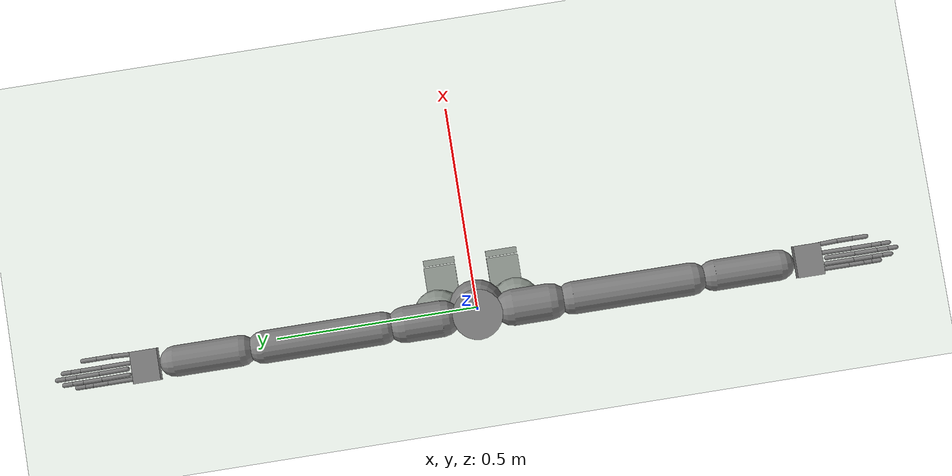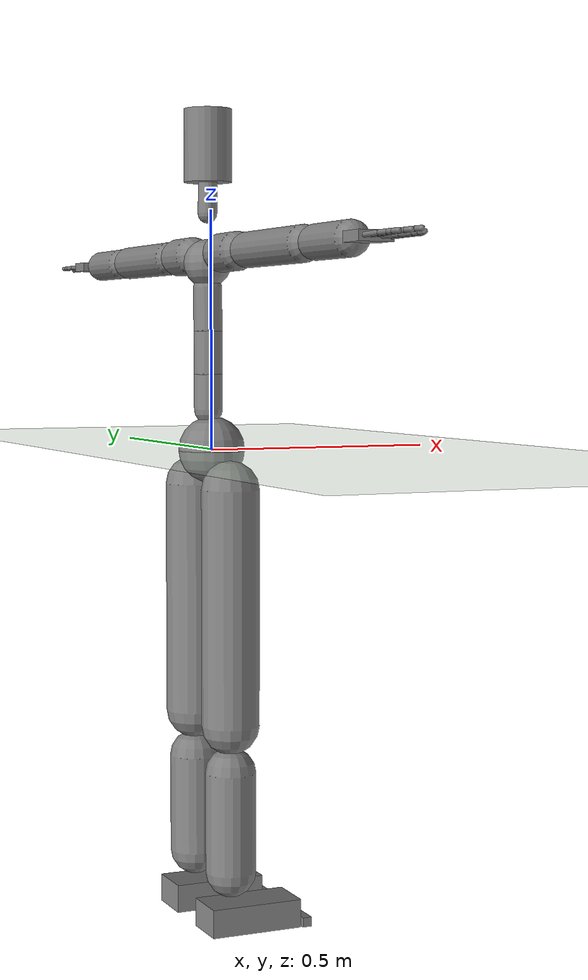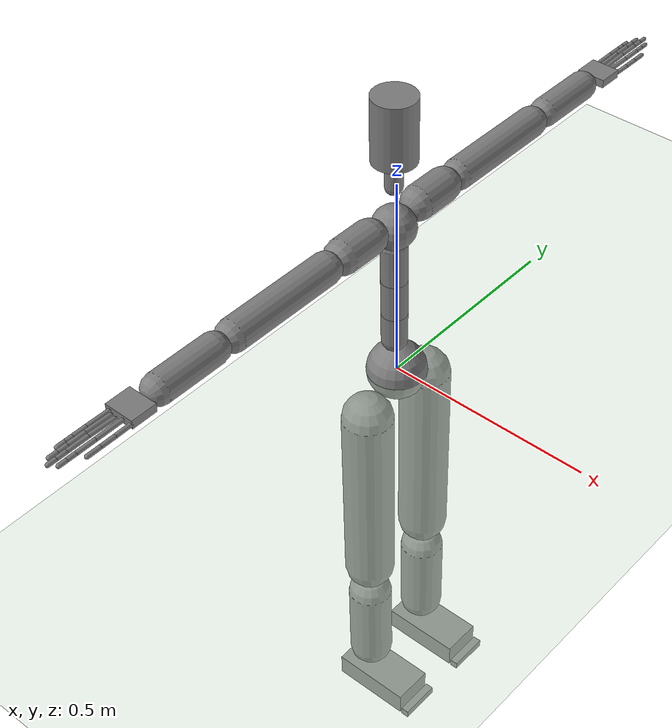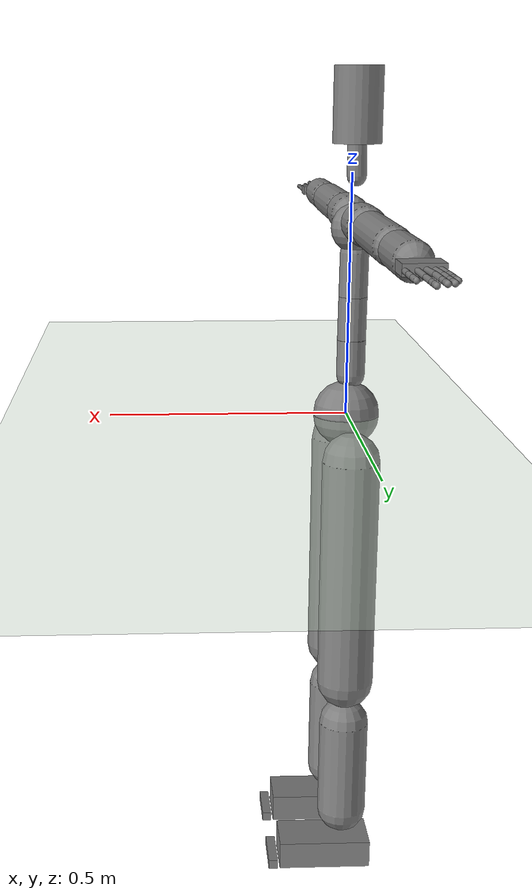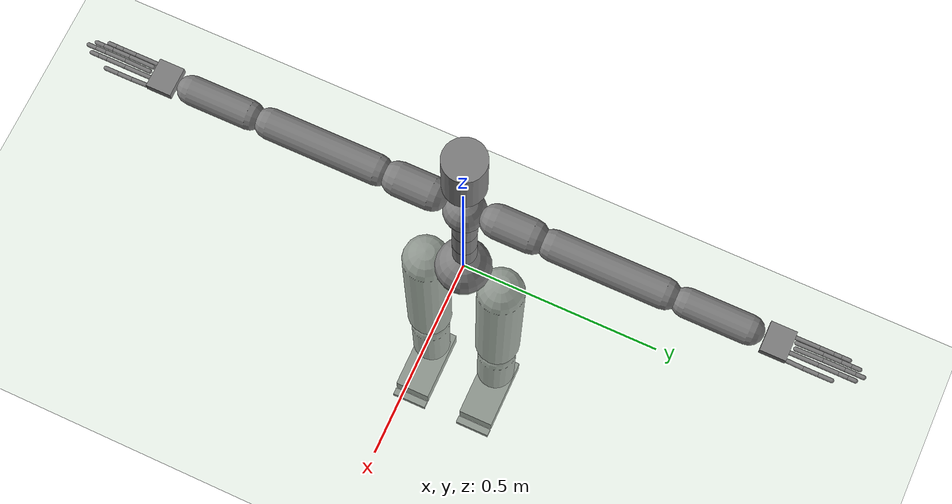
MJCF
<!-- change the damping from 50 to 500 -->
<mujoco model="humanoid">
  <compiler coordinate="local"/>
  <statistic extent="2" center="0 0 1"/>
  <option timestep="0.00555"/>
  <default>
    <motor ctrlrange="-1 1" ctrllimited="true"/>
    <geom type="capsule" condim="1" friction="1.0 0.05 0.05" solimp=".9 .99 .003" solref=".015 1"/>
    <joint type="hinge" damping="0.1" stiffness="5" armature=".007" limited="true" solimplimit="0 .99 .01"/>
    <site size=".04" group="3"/>
    <default class="force-torque">
      <site type="box" size=".01 .01 .02" rgba="1 0 0 1"/>
    </default>
    <default class="touch">
      <site type="capsule" rgba="0 0 1 .3"/>
    </default>
  </default>
  <asset>
    <texture type="skybox" builtin="gradient" rgb1=".4 .5 .6" rgb2="0 0 0" width="100" height="100"/>
    <texture builtin="flat" height="1278" mark="cross" markrgb="1 1 1" name="texgeom" random="0.01" rgb1="0.8 0.6 0.4" rgb2="0.8 0.6 0.4" type="cube" width="127"/>
    <texture builtin="checker" height="100" name="texplane" rgb1="0 0 0" rgb2="0.8 0.8 0.8" type="2d" width="100"/>
    <material name="MatPlane" reflectance="0.5" shininess="1" specular="1" texrepeat="60 60" texture="texplane"/>
    <material name="geom" texture="texgeom" texuniform="true"/>
  </asset>
  <worldbody>
    <light cutoff="100" diffuse="1 1 1" dir="-0 0 -1.3" directional="true" exponent="1" pos="0 0 1.3" specular=".1 .1 .1"/>
    <geom conaffinity="1" condim="3" name="floor" pos="0 0 0" rgba="0.8 0.9 0.8 1" size="100 100 .2" type="plane" material="MatPlane"/>
    <body name="pHipOrigin" pos="0 0 0">
      <freejoint name="pHipOrigin"/>
      <geom type="sphere" contype="1" conaffinity="1" density="4629.6296296296305" size="0.07011" pos="0.0000 0.0000 -0.0000"/>
      <body name="jL5S1" pos="-0.007187300529542061 0.0 0.06468552238174019">
        <geom type="capsule" contype="1" conaffinity="1" density="1000" fromto="0 0 0.02 0.0 0.0 0.09388382732868195" size="0.03"/>
        <joint name="jL5S1_x" type="hinge" pos="0 0 0" axis="1 0 0" stiffness="500" damping="500" armature="0.02" range="-180.0000 180.0000"/>
        <joint name="jL5S1_y" type="hinge" pos="0 0 0" axis="0 1 0" stiffness="500" damping="500" armature="0.02" range="-180.0000 180.0000"/>
        <joint name="jL5S1_z" type="hinge" pos="0 0 0" axis="0 0 1" stiffness="500" damping="500" armature="0.02" range="-180.0000 180.0000"/>
        <body name="jL4L3" pos="0.0 0.0 0.09388382732868195">
          <geom type="capsule" contype="1" conaffinity="1" density="1000" fromto="0 0 0 -0.0006975779393763393 0.0 0.09041846764764046" size="0.03"/>
          <joint name="jL4L3_x" type="hinge" pos="0 0 0" axis="1 0 0" stiffness="500" damping="500" armature="0.02" range="-180.0000 180.0000"/>
          <joint name="jL4L3_y" type="hinge" pos="0 0 0" axis="0 1 0" stiffness="500" damping="500" armature="0.02" range="-180.0000 180.0000"/>
          <joint name="jL4L3_z" type="hinge" pos="0 0 0" axis="0 0 1" stiffness="500" damping="500" armature="0.02" range="-180.0000 180.0000"/>
          <body name="jL1T12" pos="-0.0006975779393763393 0.0 0.09041846764764046">
            <geom type="capsule" contype="1" conaffinity="1" density="1000" fromto="0 0 0 -0.0007001363723100402 0.0 0.09057368234121517" size="0.03"/>
            <joint name="jL1T12_x" type="hinge" pos="0 0 0" axis="1 0 0" stiffness="500" damping="500" armature="0.02" range="-180.0000 180.0000"/>
            <joint name="jL1T12_y" type="hinge" pos="0 0 0" axis="0 1 0" stiffness="500" damping="500" armature="0.02" range="-180.0000 180.0000"/>
            <joint name="jL1T12_z" type="hinge" pos="0 0 0" axis="0 0 1" stiffness="500" damping="500" armature="0.02" range="-180.0000 180.0000"/>
            <body name="jT9T8" pos="-0.0007001363723100402 0.0 0.09057368234121517">
              <geom type="sphere" contype="1" conaffinity="1" density="1000" size="0.05011" pos="0.0000 0.0000 0.050000"/>
              <joint name="jT9T8_x" type="hinge" pos="0 0 0" axis="1 0 0" stiffness="500" damping="500" armature="0.02" range="-180.0000 180.0000"/>
              <joint name="jT9T8_y" type="hinge" pos="0 0 0" axis="0 1 0" stiffness="500" damping="500" armature="0.02" range="-180.0000 180.0000"/>
              <joint name="jT9T8_z" type="hinge" pos="0 0 0" axis="0 0 1" stiffness="500" damping="500" armature="0.02" range="-180.0000 180.0000"/>
              <body name="jT1C7" pos="0.0 0.0 0.12274900078773499">
                <geom type="capsule" contype="1" conaffinity="1" density="1000" fromto="0 0 0.03 0.0011120193594712515 0.0 0.09425794469644737" size="0.02"/>
                <joint name="jT1C7_x" type="hinge" pos="0 0 0" axis="1 0 0" stiffness="500" damping="500" armature="0.02" range="-180.0000 180.0000"/>
                <joint name="jT1C7_y" type="hinge" pos="0 0 0" axis="0 1 0" stiffness="500" damping="500" armature="0.02" range="-180.0000 180.0000"/>
                <joint name="jT1C7_z" type="hinge" pos="0 0 0" axis="0 0 1" stiffness="500" damping="500" armature="0.02" range="-180.0000 180.0000"/>
                <body name="jC1Head" pos="0.0011120193594712515 0.0 0.09425794469644737">
                  <geom type="cylinder" contype="1" conaffinity="1" density="1000" fromto="0 0 0 0 0 0.15" size="0.05"/>
                  <joint name="jC1Head_x" type="hinge" pos="0 0 0" axis="1 0 0" stiffness="500" damping="500" armature="0.02" range="-180.0000 180.0000"/>
                  <joint name="jC1Head_y" type="hinge" pos="0 0 0" axis="0 1 0" stiffness="500" damping="500" armature="0.02" range="-180.0000 180.0000"/>
                  <joint name="jC1Head_z" type="hinge" pos="0 0 0" axis="0 0 1" stiffness="500" damping="500" armature="0.02" range="-180.0000 180.0000"/>
                </body>
              </body>
              <body name="jRightT4Shoulder" pos="0.0 -0.02812971147759428 0.06858641055517392">
                <geom type="capsule" contype="1" conaffinity="1" density="1000" fromto="0 -0.05 0 0.0 -0.132083460688591 0.0" size="0.04"/>
                <joint name="jRightT4Shoulder_x" type="hinge" pos="0 0 0" axis="1 0 0" stiffness="500" damping="500" armature="0.02" range="-180.0000 180.0000"/>
                <joint name="jRightT4Shoulder_y" type="hinge" pos="0 0 0" axis="0 1 0" stiffness="500" damping="500" armature="0.02" range="-180.0000 180.0000"/>
                <joint name="jRightT4Shoulder_z" type="hinge" pos="0 0 0" axis="0 0 1" stiffness="500" damping="500" armature="0.02" range="-180.0000 180.0000"/>
                <body name="jRightShoulder" pos="0.0 -0.132083460688591 0.0">
                  <geom type="capsule" contype="1" conaffinity="1" density="1000" fromto="0 -0.05 0 0.0 -0.31279700994491577 0.0" size="0.036"/>
                  <joint name="jRightShoulder_x" type="hinge" pos="0 0 0" axis="1 0 0" stiffness="500" damping="500" armature="0.02" range="-180.0000 180.0000"/>
                  <joint name="jRightShoulder_y" type="hinge" pos="0 0 0" axis="0 1 0" stiffness="500" damping="500" armature="0.02" range="-180.0000 180.0000"/>
                  <joint name="jRightShoulder_z" type="hinge" pos="0 0 0" axis="0 0 1" stiffness="500" damping="500" armature="0.02" range="-180.0000 180.0000"/>
                  <body name="jRightElbow" pos="0.0 -0.31279700994491577 0.0">
                    <geom type="capsule" contype="1" conaffinity="1" density="1000" fromto="0 -0.05 0 0.00010445999627923093 -0.1935404431660549 0.0" size="0.034"/>
                    <joint name="jRightElbow_x" type="hinge" pos="0 0 0" axis="1 0 0" stiffness="500" damping="500" armature="0.02" range="-180.0000 180.0000"/>
                    <joint name="jRightElbow_y" type="hinge" pos="0 0 0" axis="0 1 0" stiffness="500" damping="500" armature="0.02" range="-180.0000 180.0000"/>
                    <joint name="jRightElbow_z" type="hinge" pos="0 0 0" axis="0 0 1" stiffness="500" damping="500" armature="0.02" range="-180.0000 180.0000"/>
                    <body name="jRightWrist" pos="0.00010445999627923093 -0.2595404431660549 0.0">
                      <geom density="1000" type="box" pos="0 0 0" size="0.035 0.03 0.01" quat="1.0 0 0 0"/>
                      <joint name="jRightWrist_x" type="hinge" pos="0 0 0" axis="1 0 0" stiffness="500" damping="500" armature="0.02" range="-180.0000 180.0000"/>
                      <joint name="jRightWrist_y" type="hinge" pos="0 0 0" axis="0 1 0" stiffness="500" damping="500" armature="0.02" range="-180.0000 180.0000"/>
                      <joint name="jRightWrist_z" type="hinge" pos="0 0 0" axis="0 0 1" stiffness="500" damping="500" armature="0.02" range="-180.0000 180.0000"/>
                      <body name="jRightFirstCMC" pos="0.030666549 -0.029395606 -0.0013887689">
                        <geom type="capsule" contype="1" conaffinity="1" density="1000" fromto="0 0 0 0.0013810356613248587 -0.0389719121158123 0.0008234739652834833" size="0.005"/>
                        <joint name="jRightFirstCMC_x" type="hinge" pos="0 0 0" axis="1 0 0" stiffness="500" damping="500" armature="0.02" range="-180.0000 180.0000"/>
                        <joint name="jRightFirstCMC_y" type="hinge" pos="0 0 0" axis="0 1 0" stiffness="500" damping="500" armature="0.02" range="-180.0000 180.0000"/>
                        <joint name="jRightFirstCMC_z" type="hinge" pos="0 0 0" axis="0 0 1" stiffness="500" damping="500" armature="0.02" range="-180.0000 180.0000"/>
                        <body name="jRightFirstMCP" pos="0.0013810357 -0.038971912 0.00082347397">
                          <geom type="capsule" contype="1" conaffinity="1" density="1000" fromto="0 0 0 0.0 -0.03426481783390045 0.0" size="0.005"/>
                          <joint name="jRightFirstMCP_x" type="hinge" pos="0 0 0" axis="1 0 0" stiffness="500" damping="500" armature="0.02" range="-180.0000 180.0000"/>
                          <joint name="jRightFirstMCP_y" type="hinge" pos="0 0 0" axis="0 1 0" stiffness="500" damping="500" armature="0.02" range="-180.0000 180.0000"/>
                          <joint name="jRightFirstMCP_z" type="hinge" pos="0 0 0" axis="0 0 1" stiffness="500" damping="500" armature="0.02" range="-180.0000 180.0000"/>
                          <body name="jRightIP" pos="0.0 -0.034264818 0.0">
                            <geom type="capsule" contype="1" conaffinity="1" density="1000" fromto="0 0 0 0.0 -0.03128194808959961 0.0" size="0.005"/>
                            <joint name="jRightIP_x" type="hinge" pos="0 0 0" axis="1 0 0" stiffness="500" damping="500" armature="0.02" range="-180.0000 180.0000"/>
                            <joint name="jRightIP_y" type="hinge" pos="0 0 0" axis="0 1 0" stiffness="500" damping="500" armature="0.02" range="-180.0000 180.0000"/>
                            <joint name="jRightIP_z" type="hinge" pos="0 0 0" axis="0 0 1" stiffness="500" damping="500" armature="0.02" range="-180.0000 180.0000"/>
                          </body>
                        </body>
                      </body>
                      <body name="jRightSecondCMC" pos="0.011225748 -0.03279808 -0.00057207816">
                        <geom type="capsule" contype="1" conaffinity="1" density="1000" fromto="0 0 0 -0.000395423558074981 -0.06306709349155426 -0.0006542147602885962" size="0.005"/>
                        <joint name="jRightSecondCMC_x" type="hinge" pos="0 0 0" axis="1 0 0" stiffness="500" damping="500" armature="0.02" range="-180.0000 180.0000"/>
                        <joint name="jRightSecondCMC_y" type="hinge" pos="0 0 0" axis="0 1 0" stiffness="500" damping="500" armature="0.02" range="-180.0000 180.0000"/>
                        <joint name="jRightSecondCMC_z" type="hinge" pos="0 0 0" axis="0 0 1" stiffness="500" damping="500" armature="0.02" range="-180.0000 180.0000"/>
                        <body name="jRightSecondMCP" pos="-0.00039542356 -0.06306709 -0.00065421476">
                          <geom type="capsule" contype="1" conaffinity="1" density="1000" fromto="0 0 0 0.0 -0.045637346804142 0.0" size="0.005"/>
                          <joint name="jRightSecondMCP_x" type="hinge" pos="0 0 0" axis="1 0 0" stiffness="500" damping="500" armature="0.02" range="-180.0000 180.0000"/>
                          <joint name="jRightSecondMCP_y" type="hinge" pos="0 0 0" axis="0 1 0" stiffness="500" damping="500" armature="0.02" range="-180.0000 180.0000"/>
                          <joint name="jRightSecondMCP_z" type="hinge" pos="0 0 0" axis="0 0 1" stiffness="500" damping="500" armature="0.02" range="-180.0000 180.0000"/>
                          <body name="jRightSecondPIP" pos="0.0 -0.045637347 0.0">
                            <geom type="capsule" contype="1" conaffinity="1" density="1000" fromto="0 0 0 0.0 -0.021060943603515625 0.0" size="0.005"/>
                            <joint name="jRightSecondPIP_x" type="hinge" pos="0 0 0" axis="1 0 0" stiffness="500" damping="500" armature="0.02" range="-180.0000 180.0000"/>
                            <joint name="jRightSecondPIP_y" type="hinge" pos="0 0 0" axis="0 1 0" stiffness="500" damping="500" armature="0.02" range="-180.0000 180.0000"/>
                            <joint name="jRightSecondPIP_z" type="hinge" pos="0 0 0" axis="0 0 1" stiffness="500" damping="500" armature="0.02" range="-180.0000 180.0000"/>
                            <body name="jRightSecondDIP" pos="0.0 -0.021060944 0.0">
                              <geom type="capsule" contype="1" conaffinity="1" density="1000" fromto="0 0 0 0.0 -0.01812651753425598 0.0" size="0.005"/>
                              <joint name="jRightSecondDIP_x" type="hinge" pos="0 0 0" axis="1 0 0" stiffness="500" damping="500" armature="0.02" range="-180.0000 180.0000"/>
                              <joint name="jRightSecondDIP_y" type="hinge" pos="0 0 0" axis="0 1 0" stiffness="500" damping="500" armature="0.02" range="-180.0000 180.0000"/>
                              <joint name="jRightSecondDIP_z" type="hinge" pos="0 0 0" axis="0 0 1" stiffness="500" damping="500" armature="0.02" range="-180.0000 180.0000"/>
                            </body>
                          </body>
                        </body>
                      </body>
                      <body name="jRightThirdCMC" pos="-0.0007362896 -0.03981684 0.0016739605">
                        <geom type="capsule" contype="1" conaffinity="1" density="1000" fromto="0 0 0 -0.0007376236608251929 -0.06111223250627518 0.001662628841586411" size="0.005"/>
                        <joint name="jRightThirdCMC_x" type="hinge" pos="0 0 0" axis="1 0 0" stiffness="500" damping="500" armature="0.02" range="-180.0000 180.0000"/>
                        <joint name="jRightThirdCMC_y" type="hinge" pos="0 0 0" axis="0 1 0" stiffness="500" damping="500" armature="0.02" range="-180.0000 180.0000"/>
                        <joint name="jRightThirdCMC_z" type="hinge" pos="0 0 0" axis="0 0 1" stiffness="500" damping="500" armature="0.02" range="-180.0000 180.0000"/>
                        <body name="jRightThirdMCP" pos="-0.00073762366 -0.061112233 0.0016626288">
                          <geom type="capsule" contype="1" conaffinity="1" density="1000" fromto="0 0 0 0.0 -0.049751631915569305 0.0" size="0.005"/>
                          <joint name="jRightThirdMCP_x" type="hinge" pos="0 0 0" axis="1 0 0" stiffness="500" damping="500" armature="0.02" range="-180.0000 180.0000"/>
                          <joint name="jRightThirdMCP_y" type="hinge" pos="0 0 0" axis="0 1 0" stiffness="500" damping="500" armature="0.02" range="-180.0000 180.0000"/>
                          <joint name="jRightThirdMCP_z" type="hinge" pos="0 0 0" axis="0 0 1" stiffness="500" damping="500" armature="0.02" range="-180.0000 180.0000"/>
                          <body name="jRightThirdPIP" pos="0.0 -0.049751632 0.0">
                            <geom type="capsule" contype="1" conaffinity="1" density="1000" fromto="0 0 0 0.0 -0.023923352360725403 0.0" size="0.005"/>
                            <joint name="jRightThirdPIP_x" type="hinge" pos="0 0 0" axis="1 0 0" stiffness="500" damping="500" armature="0.02" range="-180.0000 180.0000"/>
                            <joint name="jRightThirdPIP_y" type="hinge" pos="0 0 0" axis="0 1 0" stiffness="500" damping="500" armature="0.02" range="-180.0000 180.0000"/>
                            <joint name="jRightThirdPIP_z" type="hinge" pos="0 0 0" axis="0 0 1" stiffness="500" damping="500" armature="0.02" range="-180.0000 180.0000"/>
                            <body name="jRightThirdDIP" pos="0.0 -0.023923352 0.0">
                              <geom type="capsule" contype="1" conaffinity="1" density="1000" fromto="0 0 0 0.0 -0.01901569962501526 0.0" size="0.005"/>
                              <joint name="jRightThirdDIP_x" type="hinge" pos="0 0 0" axis="1 0 0" stiffness="500" damping="500" armature="0.02" range="-180.0000 180.0000"/>
                              <joint name="jRightThirdDIP_y" type="hinge" pos="0 0 0" axis="0 1 0" stiffness="500" damping="500" armature="0.02" range="-180.0000 180.0000"/>
                              <joint name="jRightThirdDIP_z" type="hinge" pos="0 0 0" axis="0 0 1" stiffness="500" damping="500" armature="0.02" range="-180.0000 180.0000"/>
                            </body>
                          </body>
                        </body>
                      </body>
                      <body name="jRightFourthCMC" pos="-0.013554313 -0.037751004 0.00088859943">
                        <geom type="capsule" contype="1" conaffinity="1" density="1000" fromto="0 0 0 -0.00043302407721057534 -0.05935017019510269 0.0009324382408522069" size="0.005"/>
                        <joint name="jRightFourthCMC_x" type="hinge" pos="0 0 0" axis="1 0 0" stiffness="500" damping="500" armature="0.02" range="-180.0000 180.0000"/>
                        <joint name="jRightFourthCMC_y" type="hinge" pos="0 0 0" axis="0 1 0" stiffness="500" damping="500" armature="0.02" range="-180.0000 180.0000"/>
                        <joint name="jRightFourthCMC_z" type="hinge" pos="0 0 0" axis="0 0 1" stiffness="500" damping="500" armature="0.02" range="-180.0000 180.0000"/>
                        <body name="jRightFourthMCP" pos="-0.00043302408 -0.05935017 0.00093243824">
                          <geom type="capsule" contype="1" conaffinity="1" density="1000" fromto="0 0 0 0.0 -0.04136144369840622 0.0" size="0.005"/>
                          <joint name="jRightFourthMCP_x" type="hinge" pos="0 0 0" axis="1 0 0" stiffness="500" damping="500" armature="0.02" range="-180.0000 180.0000"/>
                          <joint name="jRightFourthMCP_y" type="hinge" pos="0 0 0" axis="0 1 0" stiffness="500" damping="500" armature="0.02" range="-180.0000 180.0000"/>
                          <joint name="jRightFourthMCP_z" type="hinge" pos="0 0 0" axis="0 0 1" stiffness="500" damping="500" armature="0.02" range="-180.0000 180.0000"/>
                          <body name="jRightFourthPIP" pos="0.0 -0.041361444 0.0">
                            <geom type="capsule" contype="1" conaffinity="1" density="1000" fromto="0 0 0 0.0 -0.022767454385757446 0.0" size="0.005"/>
                            <joint name="jRightFourthPIP_x" type="hinge" pos="0 0 0" axis="1 0 0" stiffness="500" damping="500" armature="0.02" range="-180.0000 180.0000"/>
                            <joint name="jRightFourthPIP_y" type="hinge" pos="0 0 0" axis="0 1 0" stiffness="500" damping="500" armature="0.02" range="-180.0000 180.0000"/>
                            <joint name="jRightFourthPIP_z" type="hinge" pos="0 0 0" axis="0 0 1" stiffness="500" damping="500" armature="0.02" range="-180.0000 180.0000"/>
                            <body name="jRightFourthDIP" pos="0.0 -0.022767454 0.0">
                              <geom type="capsule" contype="1" conaffinity="1" density="1000" fromto="0 0 0 0.0 -0.019195884466171265 0.0" size="0.005"/>
                              <joint name="jRightFourthDIP_x" type="hinge" pos="0 0 0" axis="1 0 0" stiffness="500" damping="500" armature="0.02" range="-180.0000 180.0000"/>
                              <joint name="jRightFourthDIP_y" type="hinge" pos="0 0 0" axis="0 1 0" stiffness="500" damping="500" armature="0.02" range="-180.0000 180.0000"/>
                              <joint name="jRightFourthDIP_z" type="hinge" pos="0 0 0" axis="0 0 1" stiffness="500" damping="500" armature="0.02" range="-180.0000 180.0000"/>
                            </body>
                          </body>
                        </body>
                      </body>
                      <body name="jRightFifthCMC" pos="-0.02372965 -0.033064563 0.0006522576">
                        <geom type="capsule" contype="1" conaffinity="1" density="1000" fromto="0 0 0 -7.792531505401712e-06 -0.052757952362298965 0.0007260150741785765" size="0.005"/>
                        <joint name="jRightFifthCMC_x" type="hinge" pos="0 0 0" axis="1 0 0" stiffness="500" damping="500" armature="0.02" range="-180.0000 180.0000"/>
                        <joint name="jRightFifthCMC_y" type="hinge" pos="0 0 0" axis="0 1 0" stiffness="500" damping="500" armature="0.02" range="-180.0000 180.0000"/>
                        <joint name="jRightFifthCMC_z" type="hinge" pos="0 0 0" axis="0 0 1" stiffness="500" damping="500" armature="0.02" range="-180.0000 180.0000"/>
                        <body name="jRightFifthMCP" pos="-7.7925315e-06 -0.052757952 0.0007260151">
                          <geom type="capsule" contype="1" conaffinity="1" density="1000" fromto="0 0 0 0.0 -0.032077357172966 0.0" size="0.005"/>
                          <joint name="jRightFifthMCP_x" type="hinge" pos="0 0 0" axis="1 0 0" stiffness="500" damping="500" armature="0.02" range="-180.0000 180.0000"/>
                          <joint name="jRightFifthMCP_y" type="hinge" pos="0 0 0" axis="0 1 0" stiffness="500" damping="500" armature="0.02" range="-180.0000 180.0000"/>
                          <joint name="jRightFifthMCP_z" type="hinge" pos="0 0 0" axis="0 0 1" stiffness="500" damping="500" armature="0.02" range="-180.0000 180.0000"/>
                          <body name="jRightFifthPIP" pos="0.0 -0.032077357 0.0">
                            <geom type="capsule" contype="1" conaffinity="1" density="1000" fromto="0 0 0 0.0 -0.017422765493392944 0.0" size="0.005"/>
                            <joint name="jRightFifthPIP_x" type="hinge" pos="0 0 0" axis="1 0 0" stiffness="500" damping="500" armature="0.02" range="-180.0000 180.0000"/>
                            <joint name="jRightFifthPIP_y" type="hinge" pos="0 0 0" axis="0 1 0" stiffness="500" damping="500" armature="0.02" range="-180.0000 180.0000"/>
                            <joint name="jRightFifthPIP_z" type="hinge" pos="0 0 0" axis="0 0 1" stiffness="500" damping="500" armature="0.02" range="-180.0000 180.0000"/>
                            <body name="jRightFifthDIP" pos="0.0 -0.017422765 0.0">
                              <geom type="capsule" contype="1" conaffinity="1" density="1000" fromto="0 0 0 0.0 -0.018498927354812622 0.0" size="0.005"/>
                              <joint name="jRightFifthDIP_x" type="hinge" pos="0 0 0" axis="1 0 0" stiffness="500" damping="500" armature="0.02" range="-180.0000 180.0000"/>
                              <joint name="jRightFifthDIP_y" type="hinge" pos="0 0 0" axis="0 1 0" stiffness="500" damping="500" armature="0.02" range="-180.0000 180.0000"/>
                              <joint name="jRightFifthDIP_z" type="hinge" pos="0 0 0" axis="0 0 1" stiffness="500" damping="500" armature="0.02" range="-180.0000 180.0000"/>
                            </body>
                          </body>
                        </body>
                      </body>
                    </body>
                  </body>
                </body>
              </body>
              <body name="jLeftT4Shoulder" pos="0.0 0.027942383049982082 0.06812966273338773">
                <geom type="capsule" contype="1" conaffinity="1" density="1000" fromto="0 0.05 0 0.0 0.1324969083070755 0.0" size="0.04"/>
                <joint name="jLeftT4Shoulder_x" type="hinge" pos="0 0 0" axis="1 0 0" stiffness="500" damping="500" armature="0.02" range="-180.0000 180.0000"/>
                <joint name="jLeftT4Shoulder_y" type="hinge" pos="0 0 0" axis="0 1 0" stiffness="500" damping="500" armature="0.02" range="-180.0000 180.0000"/>
                <joint name="jLeftT4Shoulder_z" type="hinge" pos="0 0 0" axis="0 0 1" stiffness="500" damping="500" armature="0.02" range="-180.0000 180.0000"/>
                <body name="jLeftShoulder" pos="0.0 0.1324969083070755 0.0">
                  <geom type="capsule" contype="1" conaffinity="1" density="1000" fromto="0 0.05 0 0.0 0.31162184476852417 0.0" size="0.036"/>
                  <joint name="jLeftShoulder_x" type="hinge" pos="0 0 0" axis="1 0 0" stiffness="500" damping="500" armature="0.02" range="-180.0000 180.0000"/>
                  <joint name="jLeftShoulder_y" type="hinge" pos="0 0 0" axis="0 1 0" stiffness="500" damping="500" armature="0.02" range="-180.0000 180.0000"/>
                  <joint name="jLeftShoulder_z" type="hinge" pos="0 0 0" axis="0 0 1" stiffness="500" damping="500" armature="0.02" range="-180.0000 180.0000"/>
                  <body name="jLeftElbow" pos="0.0 0.31162184476852417 0.0">
                    <geom type="capsule" contype="1" conaffinity="1" density="1000" fromto="0 0.05 0 0.00010498661842698118 0.19484888420067636 0.0" size="0.034"/>
                    <joint name="jLeftElbow_x" type="hinge" pos="0 0 0" axis="1 0 0" stiffness="500" damping="500" armature="0.02" range="-180.0000 180.0000"/>
                    <joint name="jLeftElbow_y" type="hinge" pos="0 0 0" axis="0 1 0" stiffness="500" damping="500" armature="0.02" range="-180.0000 180.0000"/>
                    <joint name="jLeftElbow_z" type="hinge" pos="0 0 0" axis="0 0 1" stiffness="500" damping="500" armature="0.02" range="-180.0000 180.0000"/>
                    <body name="jLeftWrist" pos="0.00010498661842698118 0.26084888420067637 0.0">
                      <geom density="1000" type="box" pos="0 0 0" size="0.035 0.03 0.01" quat="1.0 0 0 0"/>
                      <joint name="jLeftWrist_x" type="hinge" pos="0 0 0" axis="1 0 0" stiffness="500" damping="500" armature="0.02" range="-180.0000 180.0000"/>
                      <joint name="jLeftWrist_y" type="hinge" pos="0 0 0" axis="0 1 0" stiffness="500" damping="500" armature="0.02" range="-180.0000 180.0000"/>
                      <joint name="jLeftWrist_z" type="hinge" pos="0 0 0" axis="0 0 1" stiffness="500" damping="500" armature="0.02" range="-180.0000 180.0000"/>
                      <body name="jLeftFirstCMC" pos="0.030015327 0.030086212 -0.0013433872">
                        <geom type="capsule" contype="1" conaffinity="1" density="1000" fromto="0 0 0 0.0013677323004230857 0.03897103667259216 0.000802507100161165" size="0.005"/>
                        <joint name="jLeftFirstCMC_x" type="hinge" pos="0 0 0" axis="1 0 0" stiffness="500" damping="500" armature="0.02" range="-180.0000 180.0000"/>
                        <joint name="jLeftFirstCMC_y" type="hinge" pos="0 0 0" axis="0 1 0" stiffness="500" damping="500" armature="0.02" range="-180.0000 180.0000"/>
                        <joint name="jLeftFirstCMC_z" type="hinge" pos="0 0 0" axis="0 0 1" stiffness="500" damping="500" armature="0.02" range="-180.0000 180.0000"/>
                        <body name="jLeftFirstMCP" pos="0.0013677323 0.038971037 0.0008025071">
                          <geom type="capsule" contype="1" conaffinity="1" density="1000" fromto="0 0 0 0.0 0.03426481783390045 0.0" size="0.005"/>
                          <joint name="jLeftFirstMCP_x" type="hinge" pos="0 0 0" axis="1 0 0" stiffness="500" damping="500" armature="0.02" range="-180.0000 180.0000"/>
                          <joint name="jLeftFirstMCP_y" type="hinge" pos="0 0 0" axis="0 1 0" stiffness="500" damping="500" armature="0.02" range="-180.0000 180.0000"/>
                          <joint name="jLeftFirstMCP_z" type="hinge" pos="0 0 0" axis="0 0 1" stiffness="500" damping="500" armature="0.02" range="-180.0000 180.0000"/>
                          <body name="jLeftIP" pos="0.0 0.034264818 0.0">
                            <geom type="capsule" contype="1" conaffinity="1" density="1000" fromto="0 0 0 0.0 0.03128194808959961 0.0" size="0.005"/>
                            <joint name="jLeftIP_x" type="hinge" pos="0 0 0" axis="1 0 0" stiffness="500" damping="500" armature="0.02" range="-180.0000 180.0000"/>
                            <joint name="jLeftIP_y" type="hinge" pos="0 0 0" axis="0 1 0" stiffness="500" damping="500" armature="0.02" range="-180.0000 180.0000"/>
                            <joint name="jLeftIP_z" type="hinge" pos="0 0 0" axis="0 0 1" stiffness="500" damping="500" armature="0.02" range="-180.0000 180.0000"/>
                          </body>
                        </body>
                      </body>
                      <body name="jLeftSecondCMC" pos="0.011355049 0.032737736 -0.00057680235">
                        <geom type="capsule" contype="1" conaffinity="1" density="1000" fromto="0 0 0 -0.00034478315501473844 0.06306838244199753 -0.0006622965447604656" size="0.005"/>
                        <joint name="jLeftSecondCMC_x" type="hinge" pos="0 0 0" axis="1 0 0" stiffness="500" damping="500" armature="0.02" range="-180.0000 180.0000"/>
                        <joint name="jLeftSecondCMC_y" type="hinge" pos="0 0 0" axis="0 1 0" stiffness="500" damping="500" armature="0.02" range="-180.0000 180.0000"/>
                        <joint name="jLeftSecondCMC_z" type="hinge" pos="0 0 0" axis="0 0 1" stiffness="500" damping="500" armature="0.02" range="-180.0000 180.0000"/>
                        <body name="jLeftSecondMCP" pos="-0.00034478316 0.06306838 -0.00066229654">
                          <geom type="capsule" contype="1" conaffinity="1" density="1000" fromto="0 0 0 0.0 0.045637346804142 0.0" size="0.005"/>
                          <joint name="jLeftSecondMCP_x" type="hinge" pos="0 0 0" axis="1 0 0" stiffness="500" damping="500" armature="0.02" range="-180.0000 180.0000"/>
                          <joint name="jLeftSecondMCP_y" type="hinge" pos="0 0 0" axis="0 1 0" stiffness="500" damping="500" armature="0.02" range="-180.0000 180.0000"/>
                          <joint name="jLeftSecondMCP_z" type="hinge" pos="0 0 0" axis="0 0 1" stiffness="500" damping="500" armature="0.02" range="-180.0000 180.0000"/>
                          <body name="jLeftSecondPIP" pos="0.0 0.045637347 0.0">
                            <geom type="capsule" contype="1" conaffinity="1" density="1000" fromto="0 0 0 0.0 0.021060943603515625 0.0" size="0.005"/>
                            <joint name="jLeftSecondPIP_x" type="hinge" pos="0 0 0" axis="1 0 0" stiffness="500" damping="500" armature="0.02" range="-180.0000 180.0000"/>
                            <joint name="jLeftSecondPIP_y" type="hinge" pos="0 0 0" axis="0 1 0" stiffness="500" damping="500" armature="0.02" range="-180.0000 180.0000"/>
                            <joint name="jLeftSecondPIP_z" type="hinge" pos="0 0 0" axis="0 0 1" stiffness="500" damping="500" armature="0.02" range="-180.0000 180.0000"/>
                            <body name="jLeftSecondDIP" pos="0.0 0.021060944 0.0">
                              <geom type="capsule" contype="1" conaffinity="1" density="1000" fromto="0 0 0 0.0 0.01812651753425598 0.0" size="0.005"/>
                              <joint name="jLeftSecondDIP_x" type="hinge" pos="0 0 0" axis="1 0 0" stiffness="500" damping="500" armature="0.02" range="-180.0000 180.0000"/>
                              <joint name="jLeftSecondDIP_y" type="hinge" pos="0 0 0" axis="0 1 0" stiffness="500" damping="500" armature="0.02" range="-180.0000 180.0000"/>
                              <joint name="jLeftSecondDIP_z" type="hinge" pos="0 0 0" axis="0 0 1" stiffness="500" damping="500" armature="0.02" range="-180.0000 180.0000"/>
                            </body>
                          </body>
                        </body>
                      </body>
                      <body name="jLeftThirdCMC" pos="-0.0007406122 0.039820418 0.0016181613">
                        <geom type="capsule" contype="1" conaffinity="1" density="1000" fromto="0 0 0 -0.000743577373214066 0.06111341714859009 0.0016292036743834615" size="0.005"/>
                        <joint name="jLeftThirdCMC_x" type="hinge" pos="0 0 0" axis="1 0 0" stiffness="500" damping="500" armature="0.02" range="-180.0000 180.0000"/>
                        <joint name="jLeftThirdCMC_y" type="hinge" pos="0 0 0" axis="0 1 0" stiffness="500" damping="500" armature="0.02" range="-180.0000 180.0000"/>
                        <joint name="jLeftThirdCMC_z" type="hinge" pos="0 0 0" axis="0 0 1" stiffness="500" damping="500" armature="0.02" range="-180.0000 180.0000"/>
                        <body name="jLeftThirdMCP" pos="-0.0007435774 0.061113417 0.0016292037">
                          <geom type="capsule" contype="1" conaffinity="1" density="1000" fromto="0 0 0 0.0 0.049751631915569305 0.0" size="0.005"/>
                          <joint name="jLeftThirdMCP_x" type="hinge" pos="0 0 0" axis="1 0 0" stiffness="500" damping="500" armature="0.02" range="-180.0000 180.0000"/>
                          <joint name="jLeftThirdMCP_y" type="hinge" pos="0 0 0" axis="0 1 0" stiffness="500" damping="500" armature="0.02" range="-180.0000 180.0000"/>
                          <joint name="jLeftThirdMCP_z" type="hinge" pos="0 0 0" axis="0 0 1" stiffness="500" damping="500" armature="0.02" range="-180.0000 180.0000"/>
                          <body name="jLeftThirdPIP" pos="0.0 0.049751632 0.0">
                            <geom type="capsule" contype="1" conaffinity="1" density="1000" fromto="0 0 0 0.0 0.023923352360725403 0.0" size="0.005"/>
                            <joint name="jLeftThirdPIP_x" type="hinge" pos="0 0 0" axis="1 0 0" stiffness="500" damping="500" armature="0.02" range="-180.0000 180.0000"/>
                            <joint name="jLeftThirdPIP_y" type="hinge" pos="0 0 0" axis="0 1 0" stiffness="500" damping="500" armature="0.02" range="-180.0000 180.0000"/>
                            <joint name="jLeftThirdPIP_z" type="hinge" pos="0 0 0" axis="0 0 1" stiffness="500" damping="500" armature="0.02" range="-180.0000 180.0000"/>
                            <body name="jLeftThirdDIP" pos="0.0 0.023923352 0.0">
                              <geom type="capsule" contype="1" conaffinity="1" density="1000" fromto="0 0 0 0.0 0.01901569962501526 0.0" size="0.005"/>
                              <joint name="jLeftThirdDIP_x" type="hinge" pos="0 0 0" axis="1 0 0" stiffness="500" damping="500" armature="0.02" range="-180.0000 180.0000"/>
                              <joint name="jLeftThirdDIP_y" type="hinge" pos="0 0 0" axis="0 1 0" stiffness="500" damping="500" armature="0.02" range="-180.0000 180.0000"/>
                              <joint name="jLeftThirdDIP_z" type="hinge" pos="0 0 0" axis="0 0 1" stiffness="500" damping="500" armature="0.02" range="-180.0000 180.0000"/>
                            </body>
                          </body>
                        </body>
                      </body>
                      <body name="jLeftFourthCMC" pos="-0.0140516665 0.037557904 0.0009485715">
                        <geom type="capsule" contype="1" conaffinity="1" density="1000" fromto="0 0 0 -0.0004656773235183209 0.059346772730350494 0.0009861607104539871" size="0.005"/>
                        <joint name="jLeftFourthCMC_x" type="hinge" pos="0 0 0" axis="1 0 0" stiffness="500" damping="500" armature="0.02" range="-180.0000 180.0000"/>
                        <joint name="jLeftFourthCMC_y" type="hinge" pos="0 0 0" axis="0 1 0" stiffness="500" damping="500" armature="0.02" range="-180.0000 180.0000"/>
                        <joint name="jLeftFourthCMC_z" type="hinge" pos="0 0 0" axis="0 0 1" stiffness="500" damping="500" armature="0.02" range="-180.0000 180.0000"/>
                        <body name="jLeftFourthMCP" pos="-0.00046567732 0.059346773 0.0009861607">
                          <geom type="capsule" contype="1" conaffinity="1" density="1000" fromto="0 0 0 0.0 0.04136144369840622 0.0" size="0.005"/>
                          <joint name="jLeftFourthMCP_x" type="hinge" pos="0 0 0" axis="1 0 0" stiffness="500" damping="500" armature="0.02" range="-180.0000 180.0000"/>
                          <joint name="jLeftFourthMCP_y" type="hinge" pos="0 0 0" axis="0 1 0" stiffness="500" damping="500" armature="0.02" range="-180.0000 180.0000"/>
                          <joint name="jLeftFourthMCP_z" type="hinge" pos="0 0 0" axis="0 0 1" stiffness="500" damping="500" armature="0.02" range="-180.0000 180.0000"/>
                          <body name="jLeftFourthPIP" pos="0.0 0.041361444 0.0">
                            <geom type="capsule" contype="1" conaffinity="1" density="1000" fromto="0 0 0 0.0 0.022767454385757446 0.0" size="0.005"/>
                            <joint name="jLeftFourthPIP_x" type="hinge" pos="0 0 0" axis="1 0 0" stiffness="500" damping="500" armature="0.02" range="-180.0000 180.0000"/>
                            <joint name="jLeftFourthPIP_y" type="hinge" pos="0 0 0" axis="0 1 0" stiffness="500" damping="500" armature="0.02" range="-180.0000 180.0000"/>
                            <joint name="jLeftFourthPIP_z" type="hinge" pos="0 0 0" axis="0 0 1" stiffness="500" damping="500" armature="0.02" range="-180.0000 180.0000"/>
                            <body name="jLeftFourthDIP" pos="0.0 0.022767454 0.0">
                              <geom type="capsule" contype="1" conaffinity="1" density="1000" fromto="0 0 0 0.0 0.019195884466171265 0.0" size="0.005"/>
                              <joint name="jLeftFourthDIP_x" type="hinge" pos="0 0 0" axis="1 0 0" stiffness="500" damping="500" armature="0.02" range="-180.0000 180.0000"/>
                              <joint name="jLeftFourthDIP_y" type="hinge" pos="0 0 0" axis="0 1 0" stiffness="500" damping="500" armature="0.02" range="-180.0000 180.0000"/>
                              <joint name="jLeftFourthDIP_z" type="hinge" pos="0 0 0" axis="0 0 1" stiffness="500" damping="500" armature="0.02" range="-180.0000 180.0000"/>
                            </body>
                          </body>
                        </body>
                      </body>
                      <body name="jLeftFifthCMC" pos="-0.024448512 0.032541838 0.00066274154">
                        <geom type="capsule" contype="1" conaffinity="1" density="1000" fromto="0 0 0 -1.4961970919102896e-05 0.05275651440024376 0.0007591330213472247" size="0.005"/>
                        <joint name="jLeftFifthCMC_x" type="hinge" pos="0 0 0" axis="1 0 0" stiffness="500" damping="500" armature="0.02" range="-180.0000 180.0000"/>
                        <joint name="jLeftFifthCMC_y" type="hinge" pos="0 0 0" axis="0 1 0" stiffness="500" damping="500" armature="0.02" range="-180.0000 180.0000"/>
                        <joint name="jLeftFifthCMC_z" type="hinge" pos="0 0 0" axis="0 0 1" stiffness="500" damping="500" armature="0.02" range="-180.0000 180.0000"/>
                        <body name="jLeftFifthMCP" pos="-1.4961971e-05 0.052756514 0.000759133">
                          <geom type="capsule" contype="1" conaffinity="1" density="1000" fromto="0 0 0 0.0 0.032077357172966 0.0" size="0.005"/>
                          <joint name="jLeftFifthMCP_x" type="hinge" pos="0 0 0" axis="1 0 0" stiffness="500" damping="500" armature="0.02" range="-180.0000 180.0000"/>
                          <joint name="jLeftFifthMCP_y" type="hinge" pos="0 0 0" axis="0 1 0" stiffness="500" damping="500" armature="0.02" range="-180.0000 180.0000"/>
                          <joint name="jLeftFifthMCP_z" type="hinge" pos="0 0 0" axis="0 0 1" stiffness="500" damping="500" armature="0.02" range="-180.0000 180.0000"/>
                          <body name="jLeftFifthPIP" pos="0.0 0.032077357 0.0">
                            <geom type="capsule" contype="1" conaffinity="1" density="1000" fromto="0 0 0 0.0 0.017422765493392944 0.0" size="0.005"/>
                            <joint name="jLeftFifthPIP_x" type="hinge" pos="0 0 0" axis="1 0 0" stiffness="500" damping="500" armature="0.02" range="-180.0000 180.0000"/>
                            <joint name="jLeftFifthPIP_y" type="hinge" pos="0 0 0" axis="0 1 0" stiffness="500" damping="500" armature="0.02" range="-180.0000 180.0000"/>
                            <joint name="jLeftFifthPIP_z" type="hinge" pos="0 0 0" axis="0 0 1" stiffness="500" damping="500" armature="0.02" range="-180.0000 180.0000"/>
                            <body name="jLeftFifthDIP" pos="0.0 0.017422765 0.0">
                              <geom type="capsule" contype="1" conaffinity="1" density="1000" fromto="0 0 0 0.0 0.018498927354812622 0.0" size="0.005"/>
                              <joint name="jLeftFifthDIP_x" type="hinge" pos="0 0 0" axis="1 0 0" stiffness="500" damping="500" armature="0.02" range="-180.0000 180.0000"/>
                              <joint name="jLeftFifthDIP_y" type="hinge" pos="0 0 0" axis="0 1 0" stiffness="500" damping="500" armature="0.02" range="-180.0000 180.0000"/>
                              <joint name="jLeftFifthDIP_z" type="hinge" pos="0 0 0" axis="0 0 1" stiffness="500" damping="500" armature="0.02" range="-180.0000 180.0000"/>
                            </body>
                          </body>
                        </body>
                      </body>
                    </body>
                  </body>
                </body>
              </body>
            </body>
          </body>
        </body>
      </body>
      <body name="jRightHip" pos="-0.00016984511788403441 -0.1007943681304134 0.0015290201416053493">
        <geom type="capsule" contype="1" conaffinity="1" density="2040.816327" fromto="0 0 -0.08 6.847838199764293e-05 0.0 -0.5743299078100005" size="0.0605"/>
        <joint name="jRightHip_x" type="hinge" pos="0 0 0" axis="1 0 0" stiffness="500" damping="500" armature="0.02" range="-180.0000 180.0000"/>
        <joint name="jRightHip_y" type="hinge" pos="0 0 0" axis="0 1 0" stiffness="500" damping="500" armature="0.02" range="-180.0000 180.0000"/>
        <joint name="jRightHip_z" type="hinge" pos="0 0 0" axis="0 0 1" stiffness="500" damping="500" armature="0.02" range="-180.0000 180.0000"/>
        <body name="jRightKnee" pos="6.847838199764293e-05 0.0 -0.5743299078100005">
          <geom type="capsule" contype="1" conaffinity="1" density="1234.567901" fromto="0 0 -0.1 0.00042364916998648356 0.0 -0.3111947456726677" size="0.0533"/>
          <joint name="jRightKnee_x" type="hinge" pos="0 0 0" axis="1 0 0" stiffness="500" damping="500" armature="0.02" range="-180.0000 180.0000"/>
          <joint name="jRightKnee_y" type="hinge" pos="0 0 0" axis="0 1 0" stiffness="500" damping="500" armature="0.02" range="-180.0000 180.0000"/>
          <joint name="jRightKnee_z" type="hinge" pos="0 0 0" axis="0 0 1" stiffness="500" damping="500" armature="0.02" range="-180.0000 180.0000"/>
          <body name="jRightAnkle" pos="0.00042364916998648356 0.0 -0.3751947456726677">
            <geom density="1000" type="box" pos="0.04 0 -0.03" size="0.1 0.05 0.03" quat="1.0 0 0 0"/>
            <joint name="jRightAnkle_x" type="hinge" pos="0 0 0" axis="1 0 0" stiffness="500" damping="500" armature="0.02" range="-180.0000 180.0000"/>
            <joint name="jRightAnkle_y" type="hinge" pos="0 0 0" axis="0 1 0" stiffness="500" damping="500" armature="0.02" range="-180.0000 180.0000"/>
            <joint name="jRightAnkle_z" type="hinge" pos="0 0 0" axis="0 0 1" stiffness="500" damping="500" armature="0.02" range="-180.0000 180.0000"/>
            <body name="jRightBallFoot" pos="0.1547715957300445 0.0 -0.0710031785361451">
              <geom density="1000" type="box" pos="0 0 0.02" size="0.01 0.05 0.01" quat="1.0 0 0 0"/>
              <joint name="jRightBallFoot_x" type="hinge" pos="0 0 0" axis="1 0 0" stiffness="500" damping="500" armature="0.02" range="-180.0000 180.0000"/>
              <joint name="jRightBallFoot_y" type="hinge" pos="0 0 0" axis="0 1 0" stiffness="500" damping="500" armature="0.02" range="-180.0000 180.0000"/>
              <joint name="jRightBallFoot_z" type="hinge" pos="0 0 0" axis="0 0 1" stiffness="500" damping="500" armature="0.02" range="-180.0000 180.0000"/>
            </body>
          </body>
        </body>
      </body>
      <body name="jLeftHip" pos="-0.00016707456090193465 0.10044478196195653 0.001503563569477713">
        <geom type="capsule" contype="1" conaffinity="1" density="2040.816327" fromto="0 0 -0.08 6.857339949020296e-05 0.0 -0.5751268219039143" size="0.0605"/>
        <joint name="jLeftHip_x" type="hinge" pos="0 0 0" axis="1 0 0" stiffness="500" damping="500" armature="0.02" range="-180.0000 180.0000"/>
        <joint name="jLeftHip_y" type="hinge" pos="0 0 0" axis="0 1 0" stiffness="500" damping="500" armature="0.02" range="-180.0000 180.0000"/>
        <joint name="jLeftHip_z" type="hinge" pos="0 0 0" axis="0 0 1" stiffness="500" damping="500" armature="0.02" range="-180.0000 180.0000"/>
        <body name="jLeftKnee" pos="6.857339949020296e-05 0.0 -0.5751268219039143">
          <geom type="capsule" contype="1" conaffinity="1" density="1234.567901" fromto="0 0 -0.1 0.00042364916998648356 0.0 -0.3111947456726677" size="0.0533"/>
          <joint name="jLeftKnee_x" type="hinge" pos="0 0 0" axis="1 0 0" stiffness="500" damping="500" armature="0.02" range="-180.0000 180.0000"/>
          <joint name="jLeftKnee_y" type="hinge" pos="0 0 0" axis="0 1 0" stiffness="500" damping="500" armature="0.02" range="-180.0000 180.0000"/>
          <joint name="jLeftKnee_z" type="hinge" pos="0 0 0" axis="0 0 1" stiffness="500" damping="500" armature="0.02" range="-180.0000 180.0000"/>
          <body name="jLeftAnkle" pos="0.00042364916998648356 0.0 -0.3751947456726677">
            <geom density="1000" type="box" pos="0.04 0 -0.03" size="0.1 0.05 0.03" quat="1.0 0 0 0"/>
            <joint name="jLeftAnkle_x" type="hinge" pos="0 0 0" axis="1 0 0" stiffness="500" damping="500" armature="0.02" range="-180.0000 180.0000"/>
            <joint name="jLeftAnkle_y" type="hinge" pos="0 0 0" axis="0 1 0" stiffness="500" damping="500" armature="0.02" range="-180.0000 180.0000"/>
            <joint name="jLeftAnkle_z" type="hinge" pos="0 0 0" axis="0 0 1" stiffness="500" damping="500" armature="0.02" range="-180.0000 180.0000"/>
            <body name="jLeftBallFoot" pos="0.15477160927210343 0.0 -0.07100318474871417">
              <geom density="1000" type="box" pos="0 0 0.02" size="0.01 0.05 0.01" quat="1.0 0 0 0"/>
              <joint name="jLeftBallFoot_x" type="hinge" pos="0 0 0" axis="1 0 0" stiffness="500" damping="500" armature="0.02" range="-180.0000 180.0000"/>
              <joint name="jLeftBallFoot_y" type="hinge" pos="0 0 0" axis="0 1 0" stiffness="500" damping="500" armature="0.02" range="-180.0000 180.0000"/>
              <joint name="jLeftBallFoot_z" type="hinge" pos="0 0 0" axis="0 0 1" stiffness="500" damping="500" armature="0.02" range="-180.0000 180.0000"/>
            </body>
          </body>
        </body>
      </body>
    </body>
  </worldbody>
  <actuator>
    <motor name="jL5S1_x" joint="jL5S1_x" gear="500"/>
    <motor name="jL5S1_y" joint="jL5S1_y" gear="500"/>
    <motor name="jL5S1_z" joint="jL5S1_z" gear="500"/>
    <motor name="jRightHip_x" joint="jRightHip_x" gear="500"/>
    <motor name="jRightHip_y" joint="jRightHip_y" gear="500"/>
    <motor name="jRightHip_z" joint="jRightHip_z" gear="500"/>
    <motor name="jLeftHip_x" joint="jLeftHip_x" gear="500"/>
    <motor name="jLeftHip_y" joint="jLeftHip_y" gear="500"/>
    <motor name="jLeftHip_z" joint="jLeftHip_z" gear="500"/>
    <motor name="jL4L3_x" joint="jL4L3_x" gear="500"/>
    <motor name="jL4L3_y" joint="jL4L3_y" gear="500"/>
    <motor name="jL4L3_z" joint="jL4L3_z" gear="500"/>
    <motor name="jL1T12_x" joint="jL1T12_x" gear="500"/>
    <motor name="jL1T12_y" joint="jL1T12_y" gear="500"/>
    <motor name="jL1T12_z" joint="jL1T12_z" gear="500"/>
    <motor name="jT9T8_x" joint="jT9T8_x" gear="500"/>
    <motor name="jT9T8_y" joint="jT9T8_y" gear="500"/>
    <motor name="jT9T8_z" joint="jT9T8_z" gear="500"/>
    <motor name="jT1C7_x" joint="jT1C7_x" gear="500"/>
    <motor name="jT1C7_y" joint="jT1C7_y" gear="500"/>
    <motor name="jT1C7_z" joint="jT1C7_z" gear="500"/>
    <motor name="jRightT4Shoulder_x" joint="jRightT4Shoulder_x" gear="500"/>
    <motor name="jRightT4Shoulder_y" joint="jRightT4Shoulder_y" gear="500"/>
    <motor name="jRightT4Shoulder_z" joint="jRightT4Shoulder_z" gear="500"/>
    <motor name="jLeftT4Shoulder_x" joint="jLeftT4Shoulder_x" gear="500"/>
    <motor name="jLeftT4Shoulder_y" joint="jLeftT4Shoulder_y" gear="500"/>
    <motor name="jLeftT4Shoulder_z" joint="jLeftT4Shoulder_z" gear="500"/>
    <motor name="jC1Head_x" joint="jC1Head_x" gear="500"/>
    <motor name="jC1Head_y" joint="jC1Head_y" gear="500"/>
    <motor name="jC1Head_z" joint="jC1Head_z" gear="500"/>
    <motor name="jRightShoulder_x" joint="jRightShoulder_x" gear="500"/>
    <motor name="jRightShoulder_y" joint="jRightShoulder_y" gear="500"/>
    <motor name="jRightShoulder_z" joint="jRightShoulder_z" gear="500"/>
    <motor name="jRightElbow_x" joint="jRightElbow_x" gear="500"/>
    <motor name="jRightElbow_y" joint="jRightElbow_y" gear="500"/>
    <motor name="jRightElbow_z" joint="jRightElbow_z" gear="500"/>
    <motor name="jRightWrist_x" joint="jRightWrist_x" gear="500"/>
    <motor name="jRightWrist_y" joint="jRightWrist_y" gear="500"/>
    <motor name="jRightWrist_z" joint="jRightWrist_z" gear="500"/>
    <motor name="jLeftShoulder_x" joint="jLeftShoulder_x" gear="500"/>
    <motor name="jLeftShoulder_y" joint="jLeftShoulder_y" gear="500"/>
    <motor name="jLeftShoulder_z" joint="jLeftShoulder_z" gear="500"/>
    <motor name="jLeftElbow_x" joint="jLeftElbow_x" gear="500"/>
    <motor name="jLeftElbow_y" joint="jLeftElbow_y" gear="500"/>
    <motor name="jLeftElbow_z" joint="jLeftElbow_z" gear="500"/>
    <motor name="jLeftWrist_x" joint="jLeftWrist_x" gear="500"/>
    <motor name="jLeftWrist_y" joint="jLeftWrist_y" gear="500"/>
    <motor name="jLeftWrist_z" joint="jLeftWrist_z" gear="500"/>
    <motor name="jRightKnee_x" joint="jRightKnee_x" gear="500"/>
    <motor name="jRightKnee_y" joint="jRightKnee_y" gear="500"/>
    <motor name="jRightKnee_z" joint="jRightKnee_z" gear="500"/>
    <motor name="jRightAnkle_x" joint="jRightAnkle_x" gear="500"/>
    <motor name="jRightAnkle_y" joint="jRightAnkle_y" gear="500"/>
    <motor name="jRightAnkle_z" joint="jRightAnkle_z" gear="500"/>
    <motor name="jRightBallFoot_x" joint="jRightBallFoot_x" gear="500"/>
    <motor name="jRightBallFoot_y" joint="jRightBallFoot_y" gear="500"/>
    <motor name="jRightBallFoot_z" joint="jRightBallFoot_z" gear="500"/>
    <motor name="jLeftKnee_x" joint="jLeftKnee_x" gear="500"/>
    <motor name="jLeftKnee_y" joint="jLeftKnee_y" gear="500"/>
    <motor name="jLeftKnee_z" joint="jLeftKnee_z" gear="500"/>
    <motor name="jLeftAnkle_x" joint="jLeftAnkle_x" gear="500"/>
    <motor name="jLeftAnkle_y" joint="jLeftAnkle_y" gear="500"/>
    <motor name="jLeftAnkle_z" joint="jLeftAnkle_z" gear="500"/>
    <motor name="jLeftBallFoot_x" joint="jLeftBallFoot_x" gear="500"/>
    <motor name="jLeftBallFoot_y" joint="jLeftBallFoot_y" gear="500"/>
    <motor name="jLeftBallFoot_z" joint="jLeftBallFoot_z" gear="500"/>
    <motor name="jLeftFirstCMC_x" joint="jLeftFirstCMC_x" gear="500"/>
    <motor name="jLeftFirstCMC_y" joint="jLeftFirstCMC_y" gear="500"/>
    <motor name="jLeftFirstCMC_z" joint="jLeftFirstCMC_z" gear="500"/>
    <motor name="jLeftSecondCMC_x" joint="jLeftSecondCMC_x" gear="500"/>
    <motor name="jLeftSecondCMC_y" joint="jLeftSecondCMC_y" gear="500"/>
    <motor name="jLeftSecondCMC_z" joint="jLeftSecondCMC_z" gear="500"/>
    <motor name="jLeftThirdCMC_x" joint="jLeftThirdCMC_x" gear="500"/>
    <motor name="jLeftThirdCMC_y" joint="jLeftThirdCMC_y" gear="500"/>
    <motor name="jLeftThirdCMC_z" joint="jLeftThirdCMC_z" gear="500"/>
    <motor name="jLeftFourthCMC_x" joint="jLeftFourthCMC_x" gear="500"/>
    <motor name="jLeftFourthCMC_y" joint="jLeftFourthCMC_y" gear="500"/>
    <motor name="jLeftFourthCMC_z" joint="jLeftFourthCMC_z" gear="500"/>
    <motor name="jLeftFifthCMC_x" joint="jLeftFifthCMC_x" gear="500"/>
    <motor name="jLeftFifthCMC_y" joint="jLeftFifthCMC_y" gear="500"/>
    <motor name="jLeftFifthCMC_z" joint="jLeftFifthCMC_z" gear="500"/>
    <motor name="jLeftFifthMCP_x" joint="jLeftFifthMCP_x" gear="500"/>
    <motor name="jLeftFifthMCP_y" joint="jLeftFifthMCP_y" gear="500"/>
    <motor name="jLeftFifthMCP_z" joint="jLeftFifthMCP_z" gear="500"/>
    <motor name="jLeftFifthPIP_x" joint="jLeftFifthPIP_x" gear="500"/>
    <motor name="jLeftFifthPIP_y" joint="jLeftFifthPIP_y" gear="500"/>
    <motor name="jLeftFifthPIP_z" joint="jLeftFifthPIP_z" gear="500"/>
    <motor name="jLeftFifthDIP_x" joint="jLeftFifthDIP_x" gear="500"/>
    <motor name="jLeftFifthDIP_y" joint="jLeftFifthDIP_y" gear="500"/>
    <motor name="jLeftFifthDIP_z" joint="jLeftFifthDIP_z" gear="500"/>
    <motor name="jLeftFourthMCP_x" joint="jLeftFourthMCP_x" gear="500"/>
    <motor name="jLeftFourthMCP_y" joint="jLeftFourthMCP_y" gear="500"/>
    <motor name="jLeftFourthMCP_z" joint="jLeftFourthMCP_z" gear="500"/>
    <motor name="jLeftFourthPIP_x" joint="jLeftFourthPIP_x" gear="500"/>
    <motor name="jLeftFourthPIP_y" joint="jLeftFourthPIP_y" gear="500"/>
    <motor name="jLeftFourthPIP_z" joint="jLeftFourthPIP_z" gear="500"/>
    <motor name="jLeftFourthDIP_x" joint="jLeftFourthDIP_x" gear="500"/>
    <motor name="jLeftFourthDIP_y" joint="jLeftFourthDIP_y" gear="500"/>
    <motor name="jLeftFourthDIP_z" joint="jLeftFourthDIP_z" gear="500"/>
    <motor name="jLeftThirdMCP_x" joint="jLeftThirdMCP_x" gear="500"/>
    <motor name="jLeftThirdMCP_y" joint="jLeftThirdMCP_y" gear="500"/>
    <motor name="jLeftThirdMCP_z" joint="jLeftThirdMCP_z" gear="500"/>
    <motor name="jLeftThirdPIP_x" joint="jLeftThirdPIP_x" gear="500"/>
    <motor name="jLeftThirdPIP_y" joint="jLeftThirdPIP_y" gear="500"/>
    <motor name="jLeftThirdPIP_z" joint="jLeftThirdPIP_z" gear="500"/>
    <motor name="jLeftThirdDIP_x" joint="jLeftThirdDIP_x" gear="500"/>
    <motor name="jLeftThirdDIP_y" joint="jLeftThirdDIP_y" gear="500"/>
    <motor name="jLeftThirdDIP_z" joint="jLeftThirdDIP_z" gear="500"/>
    <motor name="jLeftSecondMCP_x" joint="jLeftSecondMCP_x" gear="500"/>
    <motor name="jLeftSecondMCP_y" joint="jLeftSecondMCP_y" gear="500"/>
    <motor name="jLeftSecondMCP_z" joint="jLeftSecondMCP_z" gear="500"/>
    <motor name="jLeftSecondPIP_x" joint="jLeftSecondPIP_x" gear="500"/>
    <motor name="jLeftSecondPIP_y" joint="jLeftSecondPIP_y" gear="500"/>
    <motor name="jLeftSecondPIP_z" joint="jLeftSecondPIP_z" gear="500"/>
    <motor name="jLeftSecondDIP_x" joint="jLeftSecondDIP_x" gear="500"/>
    <motor name="jLeftSecondDIP_y" joint="jLeftSecondDIP_y" gear="500"/>
    <motor name="jLeftSecondDIP_z" joint="jLeftSecondDIP_z" gear="500"/>
    <motor name="jLeftFirstMCP_x" joint="jLeftFirstMCP_x" gear="500"/>
    <motor name="jLeftFirstMCP_y" joint="jLeftFirstMCP_y" gear="500"/>
    <motor name="jLeftFirstMCP_z" joint="jLeftFirstMCP_z" gear="500"/>
    <motor name="jLeftIP_x" joint="jLeftIP_x" gear="500"/>
    <motor name="jLeftIP_y" joint="jLeftIP_y" gear="500"/>
    <motor name="jLeftIP_z" joint="jLeftIP_z" gear="500"/>
    <motor name="jRightFirstCMC_x" joint="jRightFirstCMC_x" gear="500"/>
    <motor name="jRightFirstCMC_y" joint="jRightFirstCMC_y" gear="500"/>
    <motor name="jRightFirstCMC_z" joint="jRightFirstCMC_z" gear="500"/>
    <motor name="jRightSecondCMC_x" joint="jRightSecondCMC_x" gear="500"/>
    <motor name="jRightSecondCMC_y" joint="jRightSecondCMC_y" gear="500"/>
    <motor name="jRightSecondCMC_z" joint="jRightSecondCMC_z" gear="500"/>
    <motor name="jRightThirdCMC_x" joint="jRightThirdCMC_x" gear="500"/>
    <motor name="jRightThirdCMC_y" joint="jRightThirdCMC_y" gear="500"/>
    <motor name="jRightThirdCMC_z" joint="jRightThirdCMC_z" gear="500"/>
    <motor name="jRightFourthCMC_x" joint="jRightFourthCMC_x" gear="500"/>
    <motor name="jRightFourthCMC_y" joint="jRightFourthCMC_y" gear="500"/>
    <motor name="jRightFourthCMC_z" joint="jRightFourthCMC_z" gear="500"/>
    <motor name="jRightFifthCMC_x" joint="jRightFifthCMC_x" gear="500"/>
    <motor name="jRightFifthCMC_y" joint="jRightFifthCMC_y" gear="500"/>
    <motor name="jRightFifthCMC_z" joint="jRightFifthCMC_z" gear="500"/>
    <motor name="jRightFifthMCP_x" joint="jRightFifthMCP_x" gear="500"/>
    <motor name="jRightFifthMCP_y" joint="jRightFifthMCP_y" gear="500"/>
    <motor name="jRightFifthMCP_z" joint="jRightFifthMCP_z" gear="500"/>
    <motor name="jRightFifthPIP_x" joint="jRightFifthPIP_x" gear="500"/>
    <motor name="jRightFifthPIP_y" joint="jRightFifthPIP_y" gear="500"/>
    <motor name="jRightFifthPIP_z" joint="jRightFifthPIP_z" gear="500"/>
    <motor name="jRightFifthDIP_x" joint="jRightFifthDIP_x" gear="500"/>
    <motor name="jRightFifthDIP_y" joint="jRightFifthDIP_y" gear="500"/>
    <motor name="jRightFifthDIP_z" joint="jRightFifthDIP_z" gear="500"/>
    <motor name="jRightFourthMCP_x" joint="jRightFourthMCP_x" gear="500"/>
    <motor name="jRightFourthMCP_y" joint="jRightFourthMCP_y" gear="500"/>
    <motor name="jRightFourthMCP_z" joint="jRightFourthMCP_z" gear="500"/>
    <motor name="jRightFourthPIP_x" joint="jRightFourthPIP_x" gear="500"/>
    <motor name="jRightFourthPIP_y" joint="jRightFourthPIP_y" gear="500"/>
    <motor name="jRightFourthPIP_z" joint="jRightFourthPIP_z" gear="500"/>
    <motor name="jRightFourthDIP_x" joint="jRightFourthDIP_x" gear="500"/>
    <motor name="jRightFourthDIP_y" joint="jRightFourthDIP_y" gear="500"/>
    <motor name="jRightFourthDIP_z" joint="jRightFourthDIP_z" gear="500"/>
    <motor name="jRightThirdMCP_x" joint="jRightThirdMCP_x" gear="500"/>
    <motor name="jRightThirdMCP_y" joint="jRightThirdMCP_y" gear="500"/>
    <motor name="jRightThirdMCP_z" joint="jRightThirdMCP_z" gear="500"/>
    <motor name="jRightThirdPIP_x" joint="jRightThirdPIP_x" gear="500"/>
    <motor name="jRightThirdPIP_y" joint="jRightThirdPIP_y" gear="500"/>
    <motor name="jRightThirdPIP_z" joint="jRightThirdPIP_z" gear="500"/>
    <motor name="jRightThirdDIP_x" joint="jRightThirdDIP_x" gear="500"/>
    <motor name="jRightThirdDIP_y" joint="jRightThirdDIP_y" gear="500"/>
    <motor name="jRightThirdDIP_z" joint="jRightThirdDIP_z" gear="500"/>
    <motor name="jRightSecondMCP_x" joint="jRightSecondMCP_x" gear="500"/>
    <motor name="jRightSecondMCP_y" joint="jRightSecondMCP_y" gear="500"/>
    <motor name="jRightSecondMCP_z" joint="jRightSecondMCP_z" gear="500"/>
    <motor name="jRightSecondPIP_x" joint="jRightSecondPIP_x" gear="500"/>
    <motor name="jRightSecondPIP_y" joint="jRightSecondPIP_y" gear="500"/>
    <motor name="jRightSecondPIP_z" joint="jRightSecondPIP_z" gear="500"/>
    <motor name="jRightSecondDIP_x" joint="jRightSecondDIP_x" gear="500"/>
    <motor name="jRightSecondDIP_y" joint="jRightSecondDIP_y" gear="500"/>
    <motor name="jRightSecondDIP_z" joint="jRightSecondDIP_z" gear="500"/>
    <motor name="jRightFirstMCP_x" joint="jRightFirstMCP_x" gear="500"/>
    <motor name="jRightFirstMCP_y" joint="jRightFirstMCP_y" gear="500"/>
    <motor name="jRightFirstMCP_z" joint="jRightFirstMCP_z" gear="500"/>
    <motor name="jRightIP_x" joint="jRightIP_x" gear="500"/>
    <motor name="jRightIP_y" joint="jRightIP_y" gear="500"/>
    <motor name="jRightIP_z" joint="jRightIP_z" gear="500"/>
  </actuator>
</mujoco>
